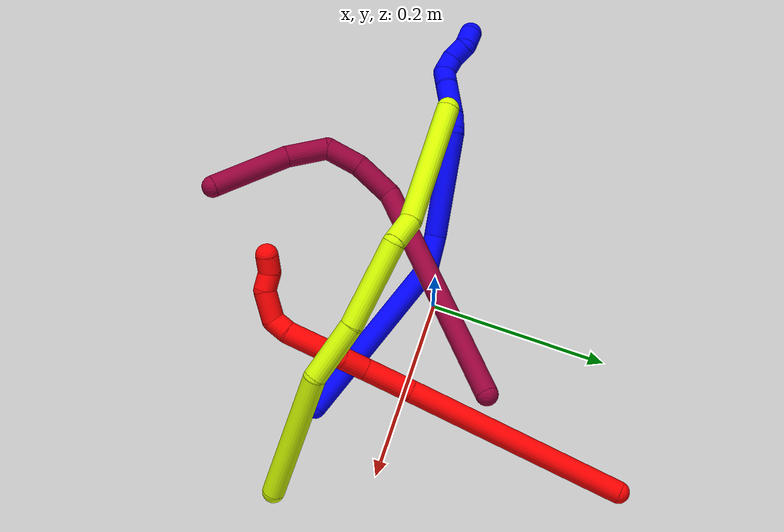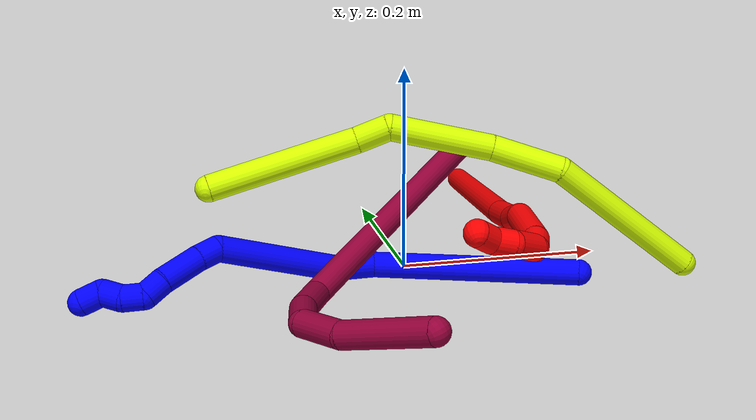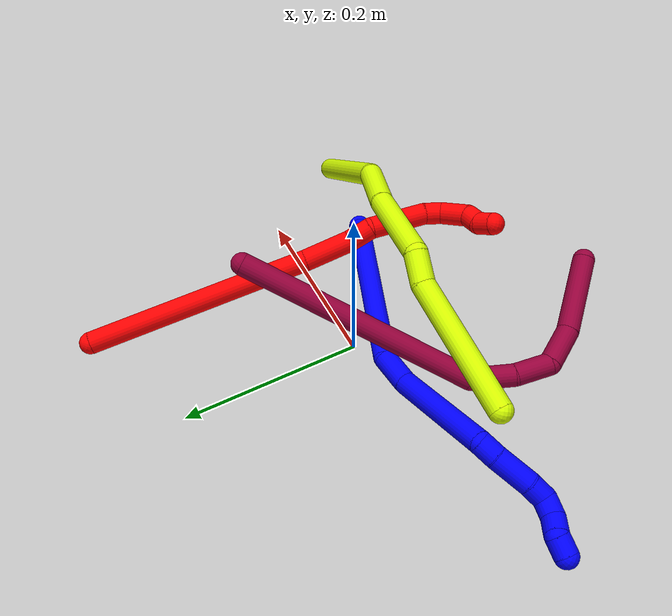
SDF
<sdf version="1.7">
 <world name="default">
  <model name="1">
   <static>0</static>
   <link name="1">
    <collision name="collision-cylinder-e_1_1_4">
     <pose>-0.091976 0.034457 -0.015529 -1.99422 -1.18091 1.6073</pose>
     <geometry><cylinder><radius>0.0125</radius><length>0.198876</length></cylinder></geometry>
     <surface>
      <friction><ode><mu>1.16</mu><mu2>1.16</mu2><slip1>0</slip1><slip2>0</slip2></ode></friction>
      <contact><ode><kp>1e+06</kp><kd>1</kd><max_vel>0</max_vel><min_depth>0.001</min_depth></ode></contact>
     </surface>
    </collision>
    <visual name="visual-cylinder-e_1_1_4">
     <pose>-0.091976 0.034457 -0.015529 -1.99422 -1.18091 1.6073</pose>
     <geometry><cylinder><radius>0.0125</radius><length>0.198876</length></cylinder></geometry>
     <material><ambient>0 0 1 1</ambient></material>
    </visual>
    <collision name="collision-cylinder-e_2_4_5">
     <pose>-0.201183 0.069753 -0.040032 -3.04841 -1.0889 2.98789</pose>
     <geometry><cylinder><radius>0.0125</radius><length>0.038893</length></cylinder></geometry>
     <surface>
      <friction><ode><mu>1.16</mu><mu2>1.16</mu2><slip1>0</slip1><slip2>0</slip2></ode></friction>
      <contact><ode><kp>1e+06</kp><kd>1</kd><max_vel>0</max_vel><min_depth>0.001</min_depth></ode></contact>
     </surface>
    </collision>
    <visual name="visual-cylinder-e_2_4_5">
     <pose>-0.201183 0.069753 -0.040032 -3.04841 -1.0889 2.98789</pose>
     <geometry><cylinder><radius>0.0125</radius><length>0.038893</length></cylinder></geometry>
     <material><ambient>0 0 1 1</ambient></material>
    </visual>
    <collision name="collision-cylinder-e_3_5_6">
     <pose>-0.273769 0.058986 -0.068114 2.5958 -1.18694 -2.35505</pose>
     <geometry><cylinder><radius>0.0125</radius><length>0.119397</length></cylinder></geometry>
     <surface>
      <friction><ode><mu>1.16</mu><mu2>1.16</mu2><slip1>0</slip1><slip2>0</slip2></ode></friction>
      <contact><ode><kp>1e+06</kp><kd>1</kd><max_vel>0</max_vel><min_depth>0.001</min_depth></ode></contact>
     </surface>
    </collision>
    <visual name="visual-cylinder-e_3_5_6">
     <pose>-0.273769 0.058986 -0.068114 2.5958 -1.18694 -2.35505</pose>
     <geometry><cylinder><radius>0.0125</radius><length>0.119397</length></cylinder></geometry>
     <material><ambient>0 0 1 1</ambient></material>
    </visual>
    <collision name="collision-cylinder-e_4_6_7">
     <pose>-0.335815 0.047953 -0.095404 -3.07168 -0.684425 2.94588</pose>
     <geometry><cylinder><radius>0.0125</radius><length>0.021169</length></cylinder></geometry>
     <surface>
      <friction><ode><mu>1.16</mu><mu2>1.16</mu2><slip1>0</slip1><slip2>0</slip2></ode></friction>
      <contact><ode><kp>1e+06</kp><kd>1</kd><max_vel>0</max_vel><min_depth>0.001</min_depth></ode></contact>
     </surface>
    </collision>
    <visual name="visual-cylinder-e_4_6_7">
     <pose>-0.335815 0.047953 -0.095404 -3.07168 -0.684425 2.94588</pose>
     <geometry><cylinder><radius>0.0125</radius><length>0.021169</length></cylinder></geometry>
     <material><ambient>0 0 1 1</ambient></material>
    </visual>
    <collision name="collision-cylinder-e_5_7_8">
     <pose>-0.353408 0.04903 -0.12059 -3.11198 -0.569857 3.04055</pose>
     <geometry><cylinder><radius>0.0125</radius><length>0.040412</length></cylinder></geometry>
     <surface>
      <friction><ode><mu>1.16</mu><mu2>1.16</mu2><slip1>0</slip1><slip2>0</slip2></ode></friction>
      <contact><ode><kp>1e+06</kp><kd>1</kd><max_vel>0</max_vel><min_depth>0.001</min_depth></ode></contact>
     </surface>
    </collision>
    <visual name="visual-cylinder-e_5_7_8">
     <pose>-0.353408 0.04903 -0.12059 -3.11198 -0.569857 3.04055</pose>
     <geometry><cylinder><radius>0.0125</radius><length>0.040412</length></cylinder></geometry>
     <material><ambient>0 0 1 1</ambient></material>
    </visual>
    <collision name="collision-cylinder-e_6_8_9">
     <pose>-0.368939 0.05119 -0.146807 -2.96367 -0.459361 2.4127</pose>
     <geometry><cylinder><radius>0.0125</radius><length>0.020883</length></cylinder></geometry>
     <surface>
      <friction><ode><mu>1.16</mu><mu2>1.16</mu2><slip1>0</slip1><slip2>0</slip2></ode></friction>
      <contact><ode><kp>1e+06</kp><kd>1</kd><max_vel>0</max_vel><min_depth>0.001</min_depth></ode></contact>
     </surface>
    </collision>
    <visual name="visual-cylinder-e_6_8_9">
     <pose>-0.368939 0.05119 -0.146807 -2.96367 -0.459361 2.4127</pose>
     <geometry><cylinder><radius>0.0125</radius><length>0.020883</length></cylinder></geometry>
     <material><ambient>0 0 1 1</ambient></material>
    </visual>
    <collision name="collision-cylinder-e_7_9_10">
     <pose>-0.382524 0.055854 -0.159389 -2.41312 -1.10366 2.03263</pose>
     <geometry><cylinder><radius>0.0125</radius><length>0.020061</length></cylinder></geometry>
     <surface>
      <friction><ode><mu>1.16</mu><mu2>1.16</mu2><slip1>0</slip1><slip2>0</slip2></ode></friction>
      <contact><ode><kp>1e+06</kp><kd>1</kd><max_vel>0</max_vel><min_depth>0.001</min_depth></ode></contact>
     </surface>
    </collision>
    <visual name="visual-cylinder-e_7_9_10">
     <pose>-0.382524 0.055854 -0.159389 -2.41312 -1.10366 2.03263</pose>
     <geometry><cylinder><radius>0.0125</radius><length>0.020061</length></cylinder></geometry>
     <material><ambient>0 0 1 1</ambient></material>
    </visual>
    <collision name="collision-cylinder-e_8_10_11">
     <pose>-0.401086 0.061755 -0.162149 -1.36284 -1.27212 1.0792</pose>
     <geometry><cylinder><radius>0.0125</radius><length>0.020102</length></cylinder></geometry>
     <surface>
      <friction><ode><mu>1.16</mu><mu2>1.16</mu2><slip1>0</slip1><slip2>0</slip2></ode></friction>
      <contact><ode><kp>1e+06</kp><kd>1</kd><max_vel>0</max_vel><min_depth>0.001</min_depth></ode></contact>
     </surface>
    </collision>
    <visual name="visual-cylinder-e_8_10_11">
     <pose>-0.401086 0.061755 -0.162149 -1.36284 -1.27212 1.0792</pose>
     <geometry><cylinder><radius>0.0125</radius><length>0.020102</length></cylinder></geometry>
     <material><ambient>0 0 1 1</ambient></material>
    </visual>
    <collision name="collision-cylinder-e_9_11_2">
     <pose>-0.417647 0.068823 -0.167562 -2.5356 -0.759276 1.81237</pose>
     <geometry><cylinder><radius>0.0125</radius><length>0.020207</length></cylinder></geometry>
     <surface>
      <friction><ode><mu>1.16</mu><mu2>1.16</mu2><slip1>0</slip1><slip2>0</slip2></ode></friction>
      <contact><ode><kp>1e+06</kp><kd>1</kd><max_vel>0</max_vel><min_depth>0.001</min_depth></ode></contact>
     </surface>
    </collision>
    <visual name="visual-cylinder-e_9_11_2">
     <pose>-0.417647 0.068823 -0.167562 -2.5356 -0.759276 1.81237</pose>
     <geometry><cylinder><radius>0.0125</radius><length>0.020207</length></cylinder></geometry>
     <material><ambient>0 0 1 1</ambient></material>
    </visual>
    <collision name="collision-sphere-2">
     <pose>-0.424602 0.072997 -0.173585 0 -0 0</pose>
     <geometry><sphere><radius>0.0125</radius></sphere></geometry>
     <surface>
      <friction><ode><mu>1.16</mu><mu2>1.16</mu2><slip1>0</slip1><slip2>0</slip2></ode></friction>
      <contact><ode><kp>1e+06</kp><kd>1</kd><max_vel>0</max_vel><min_depth>0.001</min_depth></ode></contact>
     </surface>
    </collision>
    <visual name="visual-sphere-2">
     <pose>-0.424602 0.072997 -0.173585 0 -0 0</pose>
     <geometry><sphere><radius>0.0125</radius></sphere></geometry>
     <material><ambient>0 0 1 1</ambient></material>
    </visual>
    <collision name="collision-sphere-11">
     <pose>-0.410692 0.064649 -0.161538 0 -0 0</pose>
     <geometry><sphere><radius>0.0125</radius></sphere></geometry>
     <surface>
      <friction><ode><mu>1.16</mu><mu2>1.16</mu2><slip1>0</slip1><slip2>0</slip2></ode></friction>
      <contact><ode><kp>1e+06</kp><kd>1</kd><max_vel>0</max_vel><min_depth>0.001</min_depth></ode></contact>
     </surface>
    </collision>
    <visual name="visual-sphere-11">
     <pose>-0.410692 0.064649 -0.161538 0 -0 0</pose>
     <geometry><sphere><radius>0.0125</radius></sphere></geometry>
     <material><ambient>0 0 1 1</ambient></material>
    </visual>
    <collision name="collision-sphere-10">
     <pose>-0.39148 0.058861 -0.162759 0 -0 0</pose>
     <geometry><sphere><radius>0.0125</radius></sphere></geometry>
     <surface>
      <friction><ode><mu>1.16</mu><mu2>1.16</mu2><slip1>0</slip1><slip2>0</slip2></ode></friction>
      <contact><ode><kp>1e+06</kp><kd>1</kd><max_vel>0</max_vel><min_depth>0.001</min_depth></ode></contact>
     </surface>
    </collision>
    <visual name="visual-sphere-10">
     <pose>-0.39148 0.058861 -0.162759 0 -0 0</pose>
     <geometry><sphere><radius>0.0125</radius></sphere></geometry>
     <material><ambient>0 0 1 1</ambient></material>
    </visual>
    <collision name="collision-sphere-9">
     <pose>-0.373568 0.052847 -0.156018 0 -0 0</pose>
     <geometry><sphere><radius>0.0125</radius></sphere></geometry>
     <surface>
      <friction><ode><mu>1.16</mu><mu2>1.16</mu2><slip1>0</slip1><slip2>0</slip2></ode></friction>
      <contact><ode><kp>1e+06</kp><kd>1</kd><max_vel>0</max_vel><min_depth>0.001</min_depth></ode></contact>
     </surface>
    </collision>
    <visual name="visual-sphere-9">
     <pose>-0.373568 0.052847 -0.156018 0 -0 0</pose>
     <geometry><sphere><radius>0.0125</radius></sphere></geometry>
     <material><ambient>0 0 1 1</ambient></material>
    </visual>
    <collision name="collision-sphere-4">
     <pose>-0.183951 0.068914 -0.031058 0 -0 0</pose>
     <geometry><sphere><radius>0.0125</radius></sphere></geometry>
     <surface>
      <friction><ode><mu>1.16</mu><mu2>1.16</mu2><slip1>0</slip1><slip2>0</slip2></ode></friction>
      <contact><ode><kp>1e+06</kp><kd>1</kd><max_vel>0</max_vel><min_depth>0.001</min_depth></ode></contact>
     </surface>
    </collision>
    <visual name="visual-sphere-4">
     <pose>-0.183951 0.068914 -0.031058 0 -0 0</pose>
     <geometry><sphere><radius>0.0125</radius></sphere></geometry>
     <material><ambient>0 0 1 1</ambient></material>
    </visual>
    <collision name="collision-sphere-1">
     <geometry><sphere><radius>0.0125</radius></sphere></geometry>
     <surface>
      <friction><ode><mu>1.16</mu><mu2>1.16</mu2><slip1>0</slip1><slip2>0</slip2></ode></friction>
      <contact><ode><kp>1e+06</kp><kd>1</kd><max_vel>0</max_vel><min_depth>0.001</min_depth></ode></contact>
     </surface>
    </collision>
    <visual name="visual-sphere-1">
     <geometry><sphere><radius>0.0125</radius></sphere></geometry>
     <material><ambient>0 0 1 1</ambient></material>
    </visual>
    <collision name="collision-sphere-8">
     <pose>-0.364309 0.049534 -0.137595 0 -0 0</pose>
     <geometry><sphere><radius>0.0125</radius></sphere></geometry>
     <surface>
      <friction><ode><mu>1.16</mu><mu2>1.16</mu2><slip1>0</slip1><slip2>0</slip2></ode></friction>
      <contact><ode><kp>1e+06</kp><kd>1</kd><max_vel>0</max_vel><min_depth>0.001</min_depth></ode></contact>
     </surface>
    </collision>
    <visual name="visual-sphere-8">
     <pose>-0.364309 0.049534 -0.137595 0 -0 0</pose>
     <geometry><sphere><radius>0.0125</radius></sphere></geometry>
     <material><ambient>0 0 1 1</ambient></material>
    </visual>
    <collision name="collision-sphere-5">
     <pose>-0.218415 0.070591 -0.049005 0 -0 0</pose>
     <geometry><sphere><radius>0.0125</radius></sphere></geometry>
     <surface>
      <friction><ode><mu>1.16</mu><mu2>1.16</mu2><slip1>0</slip1><slip2>0</slip2></ode></friction>
      <contact><ode><kp>1e+06</kp><kd>1</kd><max_vel>0</max_vel><min_depth>0.001</min_depth></ode></contact>
     </surface>
    </collision>
    <visual name="visual-sphere-5">
     <pose>-0.218415 0.070591 -0.049005 0 -0 0</pose>
     <geometry><sphere><radius>0.0125</radius></sphere></geometry>
     <material><ambient>0 0 1 1</ambient></material>
    </visual>
    <collision name="collision-sphere-6">
     <pose>-0.329123 0.047381 -0.087223 0 -0 0</pose>
     <geometry><sphere><radius>0.0125</radius></sphere></geometry>
     <surface>
      <friction><ode><mu>1.16</mu><mu2>1.16</mu2><slip1>0</slip1><slip2>0</slip2></ode></friction>
      <contact><ode><kp>1e+06</kp><kd>1</kd><max_vel>0</max_vel><min_depth>0.001</min_depth></ode></contact>
     </surface>
    </collision>
    <visual name="visual-sphere-6">
     <pose>-0.329123 0.047381 -0.087223 0 -0 0</pose>
     <geometry><sphere><radius>0.0125</radius></sphere></geometry>
     <material><ambient>0 0 1 1</ambient></material>
    </visual>
    <collision name="collision-sphere-7">
     <pose>-0.342506 0.048526 -0.103584 0 -0 0</pose>
     <geometry><sphere><radius>0.0125</radius></sphere></geometry>
     <surface>
      <friction><ode><mu>1.16</mu><mu2>1.16</mu2><slip1>0</slip1><slip2>0</slip2></ode></friction>
      <contact><ode><kp>1e+06</kp><kd>1</kd><max_vel>0</max_vel><min_depth>0.001</min_depth></ode></contact>
     </surface>
    </collision>
    <visual name="visual-sphere-7">
     <pose>-0.342506 0.048526 -0.103584 0 -0 0</pose>
     <geometry><sphere><radius>0.0125</radius></sphere></geometry>
     <material><ambient>0 0 1 1</ambient></material>
    </visual>
    <inertial>
     <pose>-0.224149 0.048853 -0.065159 0 -0 0</pose>
     <mass>0.5</mass>
     <inertia>
      <ixx>0.000125</ixx>
      <ixy>0</ixy>
      <ixz>0</ixz>
      <iyy>0.00095</iyy>
      <iyz>0</iyz>
      <izz>0.000547</izz>
     </inertia>
    </inertial>
   </link>
   <pose>0.151213 -0.087414 0.011467 -0.876993 0.377147 -0.245981</pose>
  </model>
  <model name="2">
   <static>0</static>
   <link name="2">
    <collision name="collision-cylinder-e_1_1_4">
     <pose>0.018367 -0.081071 -0.096289 2.44179 0.144891 0.392624</pose>
     <geometry><cylinder><radius>0.0125</radius><length>0.254412</length></cylinder></geometry>
     <surface>
      <friction><ode><mu>1.16</mu><mu2>1.16</mu2><slip1>0</slip1><slip2>0</slip2></ode></friction>
      <contact><ode><kp>1e+06</kp><kd>1</kd><max_vel>0</max_vel><min_depth>0.001</min_depth></ode></contact>
     </surface>
    </collision>
    <visual name="visual-cylinder-e_1_1_4">
     <pose>0.018367 -0.081071 -0.096289 2.44179 0.144891 0.392624</pose>
     <geometry><cylinder><radius>0.0125</radius><length>0.254412</length></cylinder></geometry>
     <material><ambient>1 0 0 1</ambient></material>
    </visual>
    <collision name="collision-cylinder-e_2_4_5">
     <pose>0.041382 -0.181068 -0.212511 2.38211 0.167558 0.41476</pose>
     <geometry><cylinder><radius>0.0125</radius><length>0.055756</length></cylinder></geometry>
     <surface>
      <friction><ode><mu>1.16</mu><mu2>1.16</mu2><slip1>0</slip1><slip2>0</slip2></ode></friction>
      <contact><ode><kp>1e+06</kp><kd>1</kd><max_vel>0</max_vel><min_depth>0.001</min_depth></ode></contact>
     </surface>
    </collision>
    <visual name="visual-cylinder-e_2_4_5">
     <pose>0.041382 -0.181068 -0.212511 2.38211 0.167558 0.41476</pose>
     <geometry><cylinder><radius>0.0125</radius><length>0.055756</length></cylinder></geometry>
     <material><ambient>1 0 0 1</ambient></material>
    </visual>
    <collision name="collision-cylinder-e_3_5_6">
     <pose>0.049143 -0.211173 -0.240651 2.20405 0.220714 0.430821</pose>
     <geometry><cylinder><radius>0.0125</radius><length>0.028425</length></cylinder></geometry>
     <surface>
      <friction><ode><mu>1.16</mu><mu2>1.16</mu2><slip1>0</slip1><slip2>0</slip2></ode></friction>
      <contact><ode><kp>1e+06</kp><kd>1</kd><max_vel>0</max_vel><min_depth>0.001</min_depth></ode></contact>
     </surface>
    </collision>
    <visual name="visual-cylinder-e_3_5_6">
     <pose>0.049143 -0.211173 -0.240651 2.20405 0.220714 0.430821</pose>
     <geometry><cylinder><radius>0.0125</radius><length>0.028425</length></cylinder></geometry>
     <material><ambient>1 0 0 1</ambient></material>
    </visual>
    <collision name="collision-cylinder-e_4_6_7">
     <pose>0.055989 -0.239502 -0.276675 2.58907 0.113768 0.396445</pose>
     <geometry><cylinder><radius>0.0125</radius><length>0.065784</length></cylinder></geometry>
     <surface>
      <friction><ode><mu>1.16</mu><mu2>1.16</mu2><slip1>0</slip1><slip2>0</slip2></ode></friction>
      <contact><ode><kp>1e+06</kp><kd>1</kd><max_vel>0</max_vel><min_depth>0.001</min_depth></ode></contact>
     </surface>
    </collision>
    <visual name="visual-cylinder-e_4_6_7">
     <pose>0.055989 -0.239502 -0.276675 2.58907 0.113768 0.396445</pose>
     <geometry><cylinder><radius>0.0125</radius><length>0.065784</length></cylinder></geometry>
     <material><ambient>1 0 0 1</ambient></material>
    </visual>
    <collision name="collision-cylinder-e_5_7_8">
     <pose>0.058236 -0.262072 -0.313209 2.58544 -0.143819 -0.494345</pose>
     <geometry><cylinder><radius>0.0125</radius><length>0.020742</length></cylinder></geometry>
     <surface>
      <friction><ode><mu>1.16</mu><mu2>1.16</mu2><slip1>0</slip1><slip2>0</slip2></ode></friction>
      <contact><ode><kp>1e+06</kp><kd>1</kd><max_vel>0</max_vel><min_depth>0.001</min_depth></ode></contact>
     </surface>
    </collision>
    <visual name="visual-cylinder-e_5_7_8">
     <pose>0.058236 -0.262072 -0.313209 2.58544 -0.143819 -0.494345</pose>
     <geometry><cylinder><radius>0.0125</radius><length>0.020742</length></cylinder></geometry>
     <material><ambient>1 0 0 1</ambient></material>
    </visual>
    <collision name="collision-cylinder-e_6_8_9">
     <pose>0.047275 -0.280849 -0.327481 1.96491 -0.579817 -0.840949</pose>
     <geometry><cylinder><radius>0.0125</radius><length>0.034589</length></cylinder></geometry>
     <surface>
      <friction><ode><mu>1.16</mu><mu2>1.16</mu2><slip1>0</slip1><slip2>0</slip2></ode></friction>
      <contact><ode><kp>1e+06</kp><kd>1</kd><max_vel>0</max_vel><min_depth>0.001</min_depth></ode></contact>
     </surface>
    </collision>
    <visual name="visual-cylinder-e_6_8_9">
     <pose>0.047275 -0.280849 -0.327481 1.96491 -0.579817 -0.840949</pose>
     <geometry><cylinder><radius>0.0125</radius><length>0.034589</length></cylinder></geometry>
     <material><ambient>1 0 0 1</ambient></material>
    </visual>
    <collision name="collision-cylinder-e_7_9_10">
     <pose>0.029161 -0.299364 -0.332796 1.52403 -1.03225 -0.992581</pose>
     <geometry><cylinder><radius>0.0125</radius><length>0.020126</length></cylinder></geometry>
     <surface>
      <friction><ode><mu>1.16</mu><mu2>1.16</mu2><slip1>0</slip1><slip2>0</slip2></ode></friction>
      <contact><ode><kp>1e+06</kp><kd>1</kd><max_vel>0</max_vel><min_depth>0.001</min_depth></ode></contact>
     </surface>
    </collision>
    <visual name="visual-cylinder-e_7_9_10">
     <pose>0.029161 -0.299364 -0.332796 1.52403 -1.03225 -0.992581</pose>
     <geometry><cylinder><radius>0.0125</radius><length>0.020126</length></cylinder></geometry>
     <material><ambient>1 0 0 1</ambient></material>
    </visual>
    <collision name="collision-cylinder-e_8_10_2">
     <pose>0.015068 -0.312912 -0.333776 1.71541 -0.57147 -0.654858</pose>
     <geometry><cylinder><radius>0.0125</radius><length>0.020167</length></cylinder></geometry>
     <surface>
      <friction><ode><mu>1.16</mu><mu2>1.16</mu2><slip1>0</slip1><slip2>0</slip2></ode></friction>
      <contact><ode><kp>1e+06</kp><kd>1</kd><max_vel>0</max_vel><min_depth>0.001</min_depth></ode></contact>
     </surface>
    </collision>
    <visual name="visual-cylinder-e_8_10_2">
     <pose>0.015068 -0.312912 -0.333776 1.71541 -0.57147 -0.654858</pose>
     <geometry><cylinder><radius>0.0125</radius><length>0.020167</length></cylinder></geometry>
     <material><ambient>1 0 0 1</ambient></material>
    </visual>
    <collision name="collision-sphere-2">
     <pose>0.009614 -0.321305 -0.334999 0 -0 0</pose>
     <geometry><sphere><radius>0.0125</radius></sphere></geometry>
     <surface>
      <friction><ode><mu>1.16</mu><mu2>1.16</mu2><slip1>0</slip1><slip2>0</slip2></ode></friction>
      <contact><ode><kp>1e+06</kp><kd>1</kd><max_vel>0</max_vel><min_depth>0.001</min_depth></ode></contact>
     </surface>
    </collision>
    <visual name="visual-sphere-2">
     <pose>0.009614 -0.321305 -0.334999 0 -0 0</pose>
     <geometry><sphere><radius>0.0125</radius></sphere></geometry>
     <material><ambient>1 0 0 1</ambient></material>
    </visual>
    <collision name="collision-sphere-10">
     <pose>0.020522 -0.304519 -0.332554 0 -0 0</pose>
     <geometry><sphere><radius>0.0125</radius></sphere></geometry>
     <surface>
      <friction><ode><mu>1.16</mu><mu2>1.16</mu2><slip1>0</slip1><slip2>0</slip2></ode></friction>
      <contact><ode><kp>1e+06</kp><kd>1</kd><max_vel>0</max_vel><min_depth>0.001</min_depth></ode></contact>
     </surface>
    </collision>
    <visual name="visual-sphere-10">
     <pose>0.020522 -0.304519 -0.332554 0 -0 0</pose>
     <geometry><sphere><radius>0.0125</radius></sphere></geometry>
     <material><ambient>1 0 0 1</ambient></material>
    </visual>
    <collision name="collision-sphere-9">
     <pose>0.0378 -0.294208 -0.333037 0 -0 0</pose>
     <geometry><sphere><radius>0.0125</radius></sphere></geometry>
     <surface>
      <friction><ode><mu>1.16</mu><mu2>1.16</mu2><slip1>0</slip1><slip2>0</slip2></ode></friction>
      <contact><ode><kp>1e+06</kp><kd>1</kd><max_vel>0</max_vel><min_depth>0.001</min_depth></ode></contact>
     </surface>
    </collision>
    <visual name="visual-sphere-9">
     <pose>0.0378 -0.294208 -0.333037 0 -0 0</pose>
     <geometry><sphere><radius>0.0125</radius></sphere></geometry>
     <material><ambient>1 0 0 1</ambient></material>
    </visual>
    <collision name="collision-sphere-4">
     <pose>0.036733 -0.162141 -0.192578 0 -0 0</pose>
     <geometry><sphere><radius>0.0125</radius></sphere></geometry>
     <surface>
      <friction><ode><mu>1.16</mu><mu2>1.16</mu2><slip1>0</slip1><slip2>0</slip2></ode></friction>
      <contact><ode><kp>1e+06</kp><kd>1</kd><max_vel>0</max_vel><min_depth>0.001</min_depth></ode></contact>
     </surface>
    </collision>
    <visual name="visual-sphere-4">
     <pose>0.036733 -0.162141 -0.192578 0 -0 0</pose>
     <geometry><sphere><radius>0.0125</radius></sphere></geometry>
     <material><ambient>1 0 0 1</ambient></material>
    </visual>
    <collision name="collision-sphere-1">
     <geometry><sphere><radius>0.0125</radius></sphere></geometry>
     <surface>
      <friction><ode><mu>1.16</mu><mu2>1.16</mu2><slip1>0</slip1><slip2>0</slip2></ode></friction>
      <contact><ode><kp>1e+06</kp><kd>1</kd><max_vel>0</max_vel><min_depth>0.001</min_depth></ode></contact>
     </surface>
    </collision>
    <visual name="visual-sphere-1">
     <geometry><sphere><radius>0.0125</radius></sphere></geometry>
     <material><ambient>1 0 0 1</ambient></material>
    </visual>
    <collision name="collision-sphere-8">
     <pose>0.05675 -0.267491 -0.321926 0 -0 0</pose>
     <geometry><sphere><radius>0.0125</radius></sphere></geometry>
     <surface>
      <friction><ode><mu>1.16</mu><mu2>1.16</mu2><slip1>0</slip1><slip2>0</slip2></ode></friction>
      <contact><ode><kp>1e+06</kp><kd>1</kd><max_vel>0</max_vel><min_depth>0.001</min_depth></ode></contact>
     </surface>
    </collision>
    <visual name="visual-sphere-8">
     <pose>0.05675 -0.267491 -0.321926 0 -0 0</pose>
     <geometry><sphere><radius>0.0125</radius></sphere></geometry>
     <material><ambient>1 0 0 1</ambient></material>
    </visual>
    <collision name="collision-sphere-5">
     <pose>0.046032 -0.199994 -0.232445 0 -0 0</pose>
     <geometry><sphere><radius>0.0125</radius></sphere></geometry>
     <surface>
      <friction><ode><mu>1.16</mu><mu2>1.16</mu2><slip1>0</slip1><slip2>0</slip2></ode></friction>
      <contact><ode><kp>1e+06</kp><kd>1</kd><max_vel>0</max_vel><min_depth>0.001</min_depth></ode></contact>
     </surface>
    </collision>
    <visual name="visual-sphere-5">
     <pose>0.046032 -0.199994 -0.232445 0 -0 0</pose>
     <geometry><sphere><radius>0.0125</radius></sphere></geometry>
     <material><ambient>1 0 0 1</ambient></material>
    </visual>
    <collision name="collision-sphere-6">
     <pose>0.052255 -0.222351 -0.248858 0 -0 0</pose>
     <geometry><sphere><radius>0.0125</radius></sphere></geometry>
     <surface>
      <friction><ode><mu>1.16</mu><mu2>1.16</mu2><slip1>0</slip1><slip2>0</slip2></ode></friction>
      <contact><ode><kp>1e+06</kp><kd>1</kd><max_vel>0</max_vel><min_depth>0.001</min_depth></ode></contact>
     </surface>
    </collision>
    <visual name="visual-sphere-6">
     <pose>0.052255 -0.222351 -0.248858 0 -0 0</pose>
     <geometry><sphere><radius>0.0125</radius></sphere></geometry>
     <material><ambient>1 0 0 1</ambient></material>
    </visual>
    <collision name="collision-sphere-7">
     <pose>0.059723 -0.256654 -0.304491 0 -0 0</pose>
     <geometry><sphere><radius>0.0125</radius></sphere></geometry>
     <surface>
      <friction><ode><mu>1.16</mu><mu2>1.16</mu2><slip1>0</slip1><slip2>0</slip2></ode></friction>
      <contact><ode><kp>1e+06</kp><kd>1</kd><max_vel>0</max_vel><min_depth>0.001</min_depth></ode></contact>
     </surface>
    </collision>
    <visual name="visual-sphere-7">
     <pose>0.059723 -0.256654 -0.304491 0 -0 0</pose>
     <geometry><sphere><radius>0.0125</radius></sphere></geometry>
     <material><ambient>1 0 0 1</ambient></material>
    </visual>
    <inertial>
     <pose>0.031588 -0.159929 -0.18528 0 -0 0</pose>
     <mass>0.5</mass>
     <inertia>
      <ixx>0.001848</ixx>
      <ixy>0</ixy>
      <ixz>0</ixz>
      <iyy>-0.000448</iyy>
      <iyz>0</iyz>
      <izz>0.000688</izz>
     </inertia>
    </inertial>
   </link>
   <pose>0.132022 0.258764 0.011664 -0.97978 -0.211743 -0.235189</pose>
  </model>
  <model name="8">
   <static>0</static>
   <link name="8">
    <collision name="collision-cylinder-e_1_1_4">
     <pose>-0.013814 -0.055257 -0.123516 2.72093 -0.101736 -0.46821</pose>
     <geometry><cylinder><radius>0.0125</radius><length>0.272031</length></cylinder></geometry>
     <surface>
      <friction><ode><mu>1.16</mu><mu2>1.16</mu2><slip1>0</slip1><slip2>0</slip2></ode></friction>
      <contact><ode><kp>1e+06</kp><kd>1</kd><max_vel>0</max_vel><min_depth>0.001</min_depth></ode></contact>
     </surface>
    </collision>
    <visual name="visual-cylinder-e_1_1_4">
     <pose>-0.013814 -0.055257 -0.123516 2.72093 -0.101736 -0.46821</pose>
     <geometry><cylinder><radius>0.0125</radius><length>0.272031</length></cylinder></geometry>
     <material><ambient>0.584314 0 0.227451 1</ambient></material>
    </visual>
    <collision name="collision-cylinder-e_2_4_5">
     <pose>-0.040225 -0.124997 -0.261355 2.35065 -0.553847 -1.1955</pose>
     <geometry><cylinder><radius>0.0125</radius><length>0.047902</length></cylinder></geometry>
     <surface>
      <friction><ode><mu>1.16</mu><mu2>1.16</mu2><slip1>0</slip1><slip2>0</slip2></ode></friction>
      <contact><ode><kp>1e+06</kp><kd>1</kd><max_vel>0</max_vel><min_depth>0.001</min_depth></ode></contact>
     </surface>
    </collision>
    <visual name="visual-cylinder-e_2_4_5">
     <pose>-0.040225 -0.124997 -0.261355 2.35065 -0.553847 -1.1955</pose>
     <geometry><cylinder><radius>0.0125</radius><length>0.047902</length></cylinder></geometry>
     <material><ambient>0.584314 0 0.227451 1</ambient></material>
    </visual>
    <collision name="collision-cylinder-e_3_5_6">
     <pose>-0.063098 -0.155014 -0.283828 2.05395 -0.529922 -0.843653</pose>
     <geometry><cylinder><radius>0.0125</radius><length>0.040659</length></cylinder></geometry>
     <surface>
      <friction><ode><mu>1.16</mu><mu2>1.16</mu2><slip1>0</slip1><slip2>0</slip2></ode></friction>
      <contact><ode><kp>1e+06</kp><kd>1</kd><max_vel>0</max_vel><min_depth>0.001</min_depth></ode></contact>
     </surface>
    </collision>
    <visual name="visual-cylinder-e_3_5_6">
     <pose>-0.063098 -0.155014 -0.283828 2.05395 -0.529922 -0.843653</pose>
     <geometry><cylinder><radius>0.0125</radius><length>0.040659</length></cylinder></geometry>
     <material><ambient>0.584314 0 0.227451 1</ambient></material>
    </visual>
    <collision name="collision-cylinder-e_4_6_7">
     <pose>-0.081528 -0.192032 -0.285602 1.28234 -0.348968 -0.261629</pose>
     <geometry><cylinder><radius>0.0125</radius><length>0.047697</length></cylinder></geometry>
     <surface>
      <friction><ode><mu>1.16</mu><mu2>1.16</mu2><slip1>0</slip1><slip2>0</slip2></ode></friction>
      <contact><ode><kp>1e+06</kp><kd>1</kd><max_vel>0</max_vel><min_depth>0.001</min_depth></ode></contact>
     </surface>
    </collision>
    <visual name="visual-cylinder-e_4_6_7">
     <pose>-0.081528 -0.192032 -0.285602 1.28234 -0.348968 -0.261629</pose>
     <geometry><cylinder><radius>0.0125</radius><length>0.047697</length></cylinder></geometry>
     <material><ambient>0.584314 0 0.227451 1</ambient></material>
    </visual>
    <collision name="collision-cylinder-e_5_7_2">
     <pose>-0.10788 -0.248413 -0.255693 0.977465 -0.40807 -0.219176</pose>
     <geometry><cylinder><radius>0.0125</radius><length>0.091712</length></cylinder></geometry>
     <surface>
      <friction><ode><mu>1.16</mu><mu2>1.16</mu2><slip1>0</slip1><slip2>0</slip2></ode></friction>
      <contact><ode><kp>1e+06</kp><kd>1</kd><max_vel>0</max_vel><min_depth>0.001</min_depth></ode></contact>
     </surface>
    </collision>
    <visual name="visual-cylinder-e_5_7_2">
     <pose>-0.10788 -0.248413 -0.255693 0.977465 -0.40807 -0.219176</pose>
     <geometry><cylinder><radius>0.0125</radius><length>0.091712</length></cylinder></geometry>
     <material><ambient>0.584314 0 0.227451 1</ambient></material>
    </visual>
    <collision name="collision-sphere-2">
     <pose>-0.126077 -0.28331 -0.232159 0 -0 0</pose>
     <geometry><sphere><radius>0.0125</radius></sphere></geometry>
     <surface>
      <friction><ode><mu>1.16</mu><mu2>1.16</mu2><slip1>0</slip1><slip2>0</slip2></ode></friction>
      <contact><ode><kp>1e+06</kp><kd>1</kd><max_vel>0</max_vel><min_depth>0.001</min_depth></ode></contact>
     </surface>
    </collision>
    <visual name="visual-sphere-2">
     <pose>-0.126077 -0.28331 -0.232159 0 -0 0</pose>
     <geometry><sphere><radius>0.0125</radius></sphere></geometry>
     <material><ambient>0.584314 0 0.227451 1</ambient></material>
    </visual>
    <collision name="collision-sphere-7">
     <pose>-0.089683 -0.213517 -0.279227 0 -0 0</pose>
     <geometry><sphere><radius>0.0125</radius></sphere></geometry>
     <surface>
      <friction><ode><mu>1.16</mu><mu2>1.16</mu2><slip1>0</slip1><slip2>0</slip2></ode></friction>
      <contact><ode><kp>1e+06</kp><kd>1</kd><max_vel>0</max_vel><min_depth>0.001</min_depth></ode></contact>
     </surface>
    </collision>
    <visual name="visual-sphere-7">
     <pose>-0.089683 -0.213517 -0.279227 0 -0 0</pose>
     <geometry><sphere><radius>0.0125</radius></sphere></geometry>
     <material><ambient>0.584314 0 0.227451 1</ambient></material>
    </visual>
    <collision name="collision-sphere-6">
     <pose>-0.073374 -0.170547 -0.291977 0 -0 0</pose>
     <geometry><sphere><radius>0.0125</radius></sphere></geometry>
     <surface>
      <friction><ode><mu>1.16</mu><mu2>1.16</mu2><slip1>0</slip1><slip2>0</slip2></ode></friction>
      <contact><ode><kp>1e+06</kp><kd>1</kd><max_vel>0</max_vel><min_depth>0.001</min_depth></ode></contact>
     </surface>
    </collision>
    <visual name="visual-sphere-6">
     <pose>-0.073374 -0.170547 -0.291977 0 -0 0</pose>
     <geometry><sphere><radius>0.0125</radius></sphere></geometry>
     <material><ambient>0.584314 0 0.227451 1</ambient></material>
    </visual>
    <collision name="collision-sphere-5">
     <pose>-0.052822 -0.13948 -0.275679 0 -0 0</pose>
     <geometry><sphere><radius>0.0125</radius></sphere></geometry>
     <surface>
      <friction><ode><mu>1.16</mu><mu2>1.16</mu2><slip1>0</slip1><slip2>0</slip2></ode></friction>
      <contact><ode><kp>1e+06</kp><kd>1</kd><max_vel>0</max_vel><min_depth>0.001</min_depth></ode></contact>
     </surface>
    </collision>
    <visual name="visual-sphere-5">
     <pose>-0.052822 -0.13948 -0.275679 0 -0 0</pose>
     <geometry><sphere><radius>0.0125</radius></sphere></geometry>
     <material><ambient>0.584314 0 0.227451 1</ambient></material>
    </visual>
    <collision name="collision-sphere-1">
     <geometry><sphere><radius>0.0125</radius></sphere></geometry>
     <surface>
      <friction><ode><mu>1.16</mu><mu2>1.16</mu2><slip1>0</slip1><slip2>0</slip2></ode></friction>
      <contact><ode><kp>1e+06</kp><kd>1</kd><max_vel>0</max_vel><min_depth>0.001</min_depth></ode></contact>
     </surface>
    </collision>
    <visual name="visual-sphere-1">
     <geometry><sphere><radius>0.0125</radius></sphere></geometry>
     <material><ambient>0.584314 0 0.227451 1</ambient></material>
    </visual>
    <collision name="collision-sphere-4">
     <pose>-0.027628 -0.110513 -0.247031 0 -0 0</pose>
     <geometry><sphere><radius>0.0125</radius></sphere></geometry>
     <surface>
      <friction><ode><mu>1.16</mu><mu2>1.16</mu2><slip1>0</slip1><slip2>0</slip2></ode></friction>
      <contact><ode><kp>1e+06</kp><kd>1</kd><max_vel>0</max_vel><min_depth>0.001</min_depth></ode></contact>
     </surface>
    </collision>
    <visual name="visual-sphere-4">
     <pose>-0.027628 -0.110513 -0.247031 0 -0 0</pose>
     <geometry><sphere><radius>0.0125</radius></sphere></geometry>
     <material><ambient>0.584314 0 0.227451 1</ambient></material>
    </visual>
    <inertial>
     <pose>-0.044065 -0.118527 -0.189464 0 -0 0</pose>
     <mass>0.5</mass>
     <inertia>
      <ixx>0.00078</ixx>
      <ixy>0</ixy>
      <ixz>0</ixz>
      <iyy>-0.002106</iyy>
      <iyz>0</iyz>
      <izz>0.000953</izz>
     </inertia>
    </inertial>
   </link>
   <pose>0.085691 0.08763 0.100485 0.84804 1.09607 1.19625</pose>
  </model>
  <model name="15">
   <static>0</static>
   <link name="15">
    <collision name="collision-cylinder-e_1_1_4">
     <pose>-0.07807 -0.014403 -0.004121 1.84945 -1.38121 -1.66226</pose>
     <geometry><cylinder><radius>0.0125</radius><length>0.158989</length></cylinder></geometry>
     <surface>
      <friction><ode><mu>1.16</mu><mu2>1.16</mu2><slip1>0</slip1><slip2>0</slip2></ode></friction>
      <contact><ode><kp>1e+06</kp><kd>1</kd><max_vel>0</max_vel><min_depth>0.001</min_depth></ode></contact>
     </surface>
    </collision>
    <visual name="visual-cylinder-e_1_1_4">
     <pose>-0.07807 -0.014403 -0.004121 1.84945 -1.38121 -1.66226</pose>
     <geometry><cylinder><radius>0.0125</radius><length>0.158989</length></cylinder></geometry>
     <material><ambient>0.835294 1 0 1</ambient></material>
    </visual>
    <collision name="collision-cylinder-e_2_4_5">
     <pose>-0.183821 -0.047931 -0.011403 1.73461 -0.959883 -1.10078</pose>
     <geometry><cylinder><radius>0.0125</radius><length>0.067587</length></cylinder></geometry>
     <surface>
      <friction><ode><mu>1.16</mu><mu2>1.16</mu2><slip1>0</slip1><slip2>0</slip2></ode></friction>
      <contact><ode><kp>1e+06</kp><kd>1</kd><max_vel>0</max_vel><min_depth>0.001</min_depth></ode></contact>
     </surface>
    </collision>
    <visual name="visual-cylinder-e_2_4_5">
     <pose>-0.183821 -0.047931 -0.011403 1.73461 -0.959883 -1.10078</pose>
     <geometry><cylinder><radius>0.0125</radius><length>0.067587</length></cylinder></geometry>
     <material><ambient>0.835294 1 0 1</ambient></material>
    </visual>
    <collision name="collision-cylinder-e_3_5_6">
     <pose>-0.251422 -0.095143 -0.01067 1.43304 -0.953185 -0.845124</pose>
     <geometry><cylinder><radius>0.0125</radius><length>0.097931</length></cylinder></geometry>
     <surface>
      <friction><ode><mu>1.16</mu><mu2>1.16</mu2><slip1>0</slip1><slip2>0</slip2></ode></friction>
      <contact><ode><kp>1e+06</kp><kd>1</kd><max_vel>0</max_vel><min_depth>0.001</min_depth></ode></contact>
     </surface>
    </collision>
    <visual name="visual-cylinder-e_3_5_6">
     <pose>-0.251422 -0.095143 -0.01067 1.43304 -0.953185 -0.845124</pose>
     <geometry><cylinder><radius>0.0125</radius><length>0.097931</length></cylinder></geometry>
     <material><ambient>0.835294 1 0 1</ambient></material>
    </visual>
    <collision name="collision-cylinder-e_4_6_7">
     <pose>-0.296711 -0.138435 -0.003306 1.34639 -0.331533 -0.265269</pose>
     <geometry><cylinder><radius>0.0125</radius><length>0.032988</length></cylinder></geometry>
     <surface>
      <friction><ode><mu>1.16</mu><mu2>1.16</mu2><slip1>0</slip1><slip2>0</slip2></ode></friction>
      <contact><ode><kp>1e+06</kp><kd>1</kd><max_vel>0</max_vel><min_depth>0.001</min_depth></ode></contact>
     </surface>
    </collision>
    <visual name="visual-cylinder-e_4_6_7">
     <pose>-0.296711 -0.138435 -0.003306 1.34639 -0.331533 -0.265269</pose>
     <geometry><cylinder><radius>0.0125</radius><length>0.032988</length></cylinder></geometry>
     <material><ambient>0.835294 1 0 1</ambient></material>
    </visual>
    <collision name="collision-cylinder-e_5_7_2">
     <pose>-0.337165 -0.20798 0.030049 1.068 -0.51486 -0.308866</pose>
     <geometry><cylinder><radius>0.0125</radius><length>0.142505</length></cylinder></geometry>
     <surface>
      <friction><ode><mu>1.16</mu><mu2>1.16</mu2><slip1>0</slip1><slip2>0</slip2></ode></friction>
      <contact><ode><kp>1e+06</kp><kd>1</kd><max_vel>0</max_vel><min_depth>0.001</min_depth></ode></contact>
     </surface>
    </collision>
    <visual name="visual-cylinder-e_5_7_2">
     <pose>-0.337165 -0.20798 0.030049 1.068 -0.51486 -0.308866</pose>
     <geometry><cylinder><radius>0.0125</radius><length>0.142505</length></cylinder></geometry>
     <material><ambient>0.835294 1 0 1</ambient></material>
    </visual>
    <collision name="collision-sphere-2">
     <pose>-0.372251 -0.26232 0.059933 0 -0 0</pose>
     <geometry><sphere><radius>0.0125</radius></sphere></geometry>
     <surface>
      <friction><ode><mu>1.16</mu><mu2>1.16</mu2><slip1>0</slip1><slip2>0</slip2></ode></friction>
      <contact><ode><kp>1e+06</kp><kd>1</kd><max_vel>0</max_vel><min_depth>0.001</min_depth></ode></contact>
     </surface>
    </collision>
    <visual name="visual-sphere-2">
     <pose>-0.372251 -0.26232 0.059933 0 -0 0</pose>
     <geometry><sphere><radius>0.0125</radius></sphere></geometry>
     <material><ambient>0.835294 1 0 1</ambient></material>
    </visual>
    <collision name="collision-sphere-7">
     <pose>-0.302079 -0.15364 0.000165 0 -0 0</pose>
     <geometry><sphere><radius>0.0125</radius></sphere></geometry>
     <surface>
      <friction><ode><mu>1.16</mu><mu2>1.16</mu2><slip1>0</slip1><slip2>0</slip2></ode></friction>
      <contact><ode><kp>1e+06</kp><kd>1</kd><max_vel>0</max_vel><min_depth>0.001</min_depth></ode></contact>
     </surface>
    </collision>
    <visual name="visual-sphere-7">
     <pose>-0.302079 -0.15364 0.000165 0 -0 0</pose>
     <geometry><sphere><radius>0.0125</radius></sphere></geometry>
     <material><ambient>0.835294 1 0 1</ambient></material>
    </visual>
    <collision name="collision-sphere-6">
     <pose>-0.291342 -0.12323 -0.006776 0 -0 0</pose>
     <geometry><sphere><radius>0.0125</radius></sphere></geometry>
     <surface>
      <friction><ode><mu>1.16</mu><mu2>1.16</mu2><slip1>0</slip1><slip2>0</slip2></ode></friction>
      <contact><ode><kp>1e+06</kp><kd>1</kd><max_vel>0</max_vel><min_depth>0.001</min_depth></ode></contact>
     </surface>
    </collision>
    <visual name="visual-sphere-6">
     <pose>-0.291342 -0.12323 -0.006776 0 -0 0</pose>
     <geometry><sphere><radius>0.0125</radius></sphere></geometry>
     <material><ambient>0.835294 1 0 1</ambient></material>
    </visual>
    <collision name="collision-sphere-5">
     <pose>-0.211502 -0.067056 -0.014564 0 -0 0</pose>
     <geometry><sphere><radius>0.0125</radius></sphere></geometry>
     <surface>
      <friction><ode><mu>1.16</mu><mu2>1.16</mu2><slip1>0</slip1><slip2>0</slip2></ode></friction>
      <contact><ode><kp>1e+06</kp><kd>1</kd><max_vel>0</max_vel><min_depth>0.001</min_depth></ode></contact>
     </surface>
    </collision>
    <visual name="visual-sphere-5">
     <pose>-0.211502 -0.067056 -0.014564 0 -0 0</pose>
     <geometry><sphere><radius>0.0125</radius></sphere></geometry>
     <material><ambient>0.835294 1 0 1</ambient></material>
    </visual>
    <collision name="collision-sphere-1">
     <geometry><sphere><radius>0.0125</radius></sphere></geometry>
     <surface>
      <friction><ode><mu>1.16</mu><mu2>1.16</mu2><slip1>0</slip1><slip2>0</slip2></ode></friction>
      <contact><ode><kp>1e+06</kp><kd>1</kd><max_vel>0</max_vel><min_depth>0.001</min_depth></ode></contact>
     </surface>
    </collision>
    <visual name="visual-sphere-1">
     <geometry><sphere><radius>0.0125</radius></sphere></geometry>
     <material><ambient>0.835294 1 0 1</ambient></material>
    </visual>
    <collision name="collision-sphere-4">
     <pose>-0.156141 -0.028807 -0.008241 0 -0 0</pose>
     <geometry><sphere><radius>0.0125</radius></sphere></geometry>
     <surface>
      <friction><ode><mu>1.16</mu><mu2>1.16</mu2><slip1>0</slip1><slip2>0</slip2></ode></friction>
      <contact><ode><kp>1e+06</kp><kd>1</kd><max_vel>0</max_vel><min_depth>0.001</min_depth></ode></contact>
     </surface>
    </collision>
    <visual name="visual-sphere-4">
     <pose>-0.156141 -0.028807 -0.008241 0 -0 0</pose>
     <geometry><sphere><radius>0.0125</radius></sphere></geometry>
     <material><ambient>0.835294 1 0 1</ambient></material>
    </visual>
    <inertial>
     <pose>-0.214588 -0.098104 0.003405 0 -0 0</pose>
     <mass>0.5</mass>
     <inertia><ixx>3.2e-05</ixx><ixy>0</ixy><ixz>0</ixz><iyy>0.000351</iyy><iyz>0</iyz><izz>0.00087</izz></inertia>
    </inertial>
   </link>
   <pose>0.253075 -0.099416 0.017289 2.15403 0.798282 0.101752</pose>
  </model>
 </world>
</sdf>
